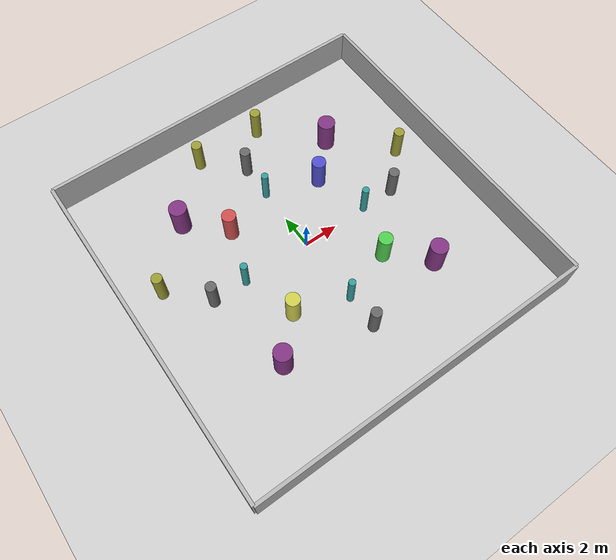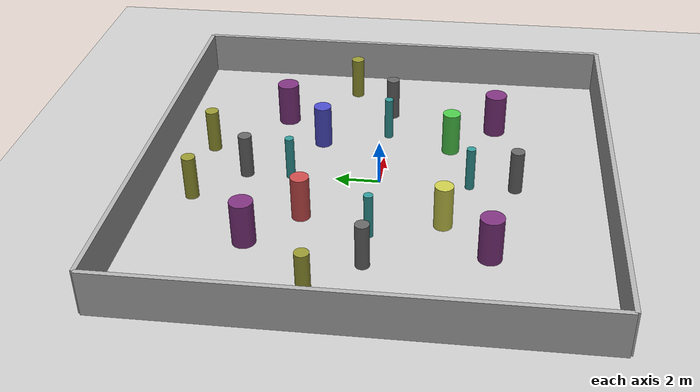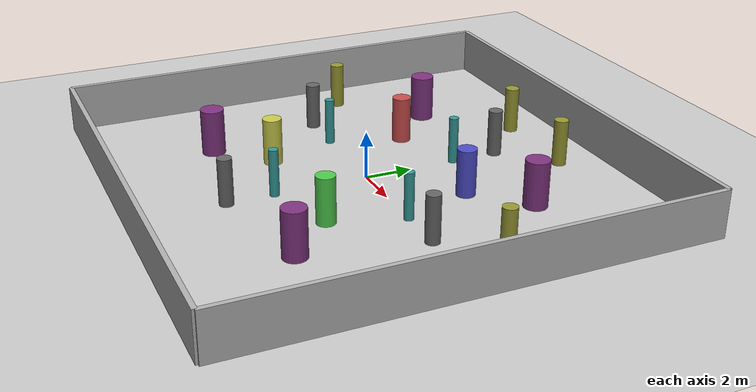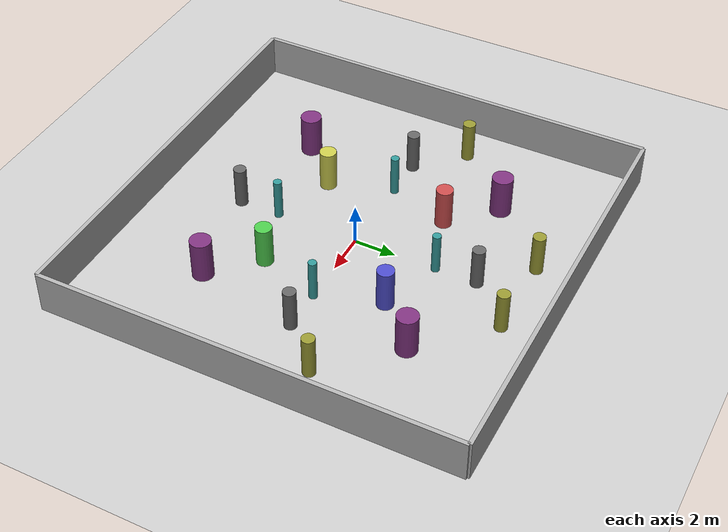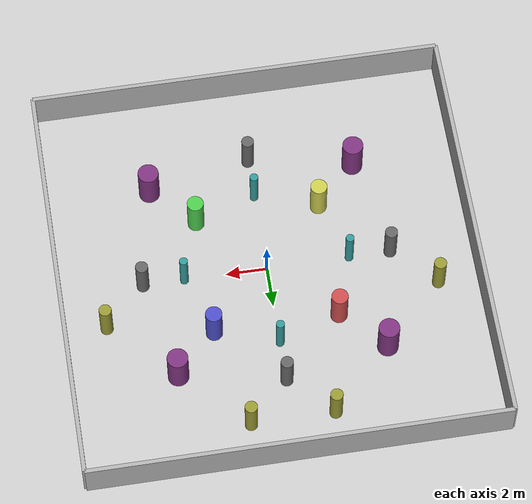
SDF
<?xml version="1.0" ?>
<sdf version="1.8">
  <world name="complex_cylinder_world">
    <!-- Physics -->
    <physics name="1ms" type="ignored">
      <max_step_size>0.001</max_step_size>
      <real_time_factor>1.0</real_time_factor>
    </physics>

    <!-- Plugins -->
    <plugin filename="gz-sim-physics-system" name="gz::sim::systems::Physics"/>
    <plugin filename="gz-sim-user-commands-system" name="gz::sim::systems::UserCommands"/>
    <plugin filename="gz-sim-scene-broadcaster-system" name="gz::sim::systems::SceneBroadcaster"/>
    <plugin filename="gz-sim-sensors-system" name="gz::sim::systems::Sensors"/>

    <!-- Lighting -->
    <light type="directional" name="sun">
      <cast_shadows>true</cast_shadows>
      <pose>0 0 10 0 0 0</pose>
      <diffuse>0.8 0.8 0.8 1</diffuse>
      <specular>0.2 0.2 0.2 1</specular>
      <attenuation>
        <range>1000</range>
        <constant>0.9</constant>
        <linear>0.01</linear>
        <quadratic>0.001</quadratic>
      </attenuation>
      <direction>-0.5 0.1 -0.9</direction>
    </light>

    <!-- Ground Plane -->
    <model name="ground_plane">
      <static>true</static>
      <link name="link">
        <collision name="collision">
          <geometry>
            <plane>
              <normal>0 0 1</normal>
              <size>100 100</size>
            </plane>
          </geometry>
        </collision>
        <visual name="visual">
          <geometry>
            <plane>
              <normal>0 0 1</normal>
              <size>100 100</size>
            </plane>
          </geometry>
          <material>
            <ambient>0.8 0.8 0.8 1</ambient>
            <diffuse>0.8 0.8 0.8 1</diffuse>
            <specular>0.8 0.8 0.8 1</specular>
          </material>
        </visual>
      </link>
    </model>

    <!-- Outer Walls (20m x 20m) -->
    <model name="outer_walls">
      <static>true</static>
      <link name="link">
        <visual name="wall_n">
          <pose>0 10 1.0 0 0 0</pose>
          <geometry><box><size>20 0.2 2</size></box></geometry>
          <material><ambient>0.7 0.7 0.7 1</ambient><diffuse>0.7 0.7 0.7 1</diffuse></material>
        </visual>
        <collision name="wall_n">
          <pose>0 10 1.0 0 0 0</pose>
          <geometry><box><size>20 0.2 2</size></box></geometry>
        </collision>

        <visual name="wall_s">
          <pose>0 -10 1.0 0 0 0</pose>
          <geometry><box><size>20 0.2 2</size></box></geometry>
          <material><ambient>0.7 0.7 0.7 1</ambient><diffuse>0.7 0.7 0.7 1</diffuse></material>
        </visual>
        <collision name="wall_s">
          <pose>0 -10 1.0 0 0 0</pose>
          <geometry><box><size>20 0.2 2</size></box></geometry>
        </collision>

        <visual name="wall_e">
          <pose>10 0 1.0 0 0 0</pose>
          <geometry><box><size>0.2 20 2</size></box></geometry>
          <material><ambient>0.7 0.7 0.7 1</ambient><diffuse>0.7 0.7 0.7 1</diffuse></material>
        </visual>
        <collision name="wall_e">
          <pose>10 0 1.0 0 0 0</pose>
          <geometry><box><size>0.2 20 2</size></box></geometry>
        </collision>

        <visual name="wall_w">
          <pose>-10 0 1.0 0 0 0</pose>
          <geometry><box><size>0.2 20 2</size></box></geometry>
          <material><ambient>0.7 0.7 0.7 1</ambient><diffuse>0.7 0.7 0.7 1</diffuse></material>
        </visual>
        <collision name="wall_w">
          <pose>-10 0 1.0 0 0 0</pose>
          <geometry><box><size>0.2 20 2</size></box></geometry>
        </collision>
      </link>
    </model>

    <!-- Cylinder Obstacles -->
    <!-- Creating a scattered field of cylinders -->

    <model name="cylinder_1">
      <static>true</static>
      <pose>3 3 1 0 0 0</pose>
      <link name="link">
        <visual name="v"><geometry><cylinder><radius>0.4</radius><length>2</length></cylinder></geometry>
        <material><ambient>0.3 0.3 0.8 1</ambient><diffuse>0.3 0.3 0.8 1</diffuse></material></visual>
        <collision name="c"><geometry><cylinder><radius>0.4</radius><length>2</length></cylinder></geometry></collision>
      </link>
    </model>

    <model name="cylinder_2">
      <static>true</static>
      <pose>-3 3 1 0 0 0</pose>
      <link name="link">
        <visual name="v"><geometry><cylinder><radius>0.4</radius><length>2</length></cylinder></geometry>
        <material><ambient>0.8 0.3 0.3 1</ambient><diffuse>0.8 0.3 0.3 1</diffuse></material></visual>
        <collision name="c"><geometry><cylinder><radius>0.4</radius><length>2</length></cylinder></geometry></collision>
      </link>
    </model>

    <model name="cylinder_3">
      <static>true</static>
      <pose>3 -3 1 0 0 0</pose>
      <link name="link">
        <visual name="v"><geometry><cylinder><radius>0.4</radius><length>2</length></cylinder></geometry>
        <material><ambient>0.3 0.8 0.3 1</ambient><diffuse>0.3 0.8 0.3 1</diffuse></material></visual>
        <collision name="c"><geometry><cylinder><radius>0.4</radius><length>2</length></cylinder></geometry></collision>
      </link>
    </model>

    <model name="cylinder_4">
      <static>true</static>
      <pose>-3 -3 1 0 0 0</pose>
      <link name="link">
        <visual name="v"><geometry><cylinder><radius>0.4</radius><length>2</length></cylinder></geometry>
        <material><ambient>0.8 0.8 0.3 1</ambient><diffuse>0.8 0.8 0.3 1</diffuse></material></visual>
        <collision name="c"><geometry><cylinder><radius>0.4</radius><length>2</length></cylinder></geometry></collision>
      </link>
    </model>

    <model name="cylinder_5">
      <static>true</static>
      <pose>6 0 1 0 0 0</pose>
      <link name="link">
        <visual name="v"><geometry><cylinder><radius>0.3</radius><length>2</length></cylinder></geometry>
        <material><ambient>0.4 0.4 0.4 1</ambient><diffuse>0.4 0.4 0.4 1</diffuse></material></visual>
        <collision name="c"><geometry><cylinder><radius>0.3</radius><length>2</length></cylinder></geometry></collision>
      </link>
    </model>

    <model name="cylinder_6">
      <static>true</static>
      <pose>-6 0 1 0 0 0</pose>
      <link name="link">
        <visual name="v"><geometry><cylinder><radius>0.3</radius><length>2</length></cylinder></geometry>
        <material><ambient>0.4 0.4 0.4 1</ambient><diffuse>0.4 0.4 0.4 1</diffuse></material></visual>
        <collision name="c"><geometry><cylinder><radius>0.3</radius><length>2</length></cylinder></geometry></collision>
      </link>
    </model>

    <model name="cylinder_7">
      <static>true</static>
      <pose>0 6 1 0 0 0</pose>
      <link name="link">
        <visual name="v"><geometry><cylinder><radius>0.3</radius><length>2</length></cylinder></geometry>
        <material><ambient>0.4 0.4 0.4 1</ambient><diffuse>0.4 0.4 0.4 1</diffuse></material></visual>
        <collision name="c"><geometry><cylinder><radius>0.3</radius><length>2</length></cylinder></geometry></collision>
      </link>
    </model>

    <model name="cylinder_8">
      <static>true</static>
      <pose>0 -6 1 0 0 0</pose>
      <link name="link">
        <visual name="v"><geometry><cylinder><radius>0.3</radius><length>2</length></cylinder></geometry>
        <material><ambient>0.4 0.4 0.4 1</ambient><diffuse>0.4 0.4 0.4 1</diffuse></material></visual>
        <collision name="c"><geometry><cylinder><radius>0.3</radius><length>2</length></cylinder></geometry></collision>
      </link>
    </model>

    <model name="cylinder_9">
      <static>true</static>
      <pose>5 5 1 0 0 0</pose>
      <link name="link">
        <visual name="v"><geometry><cylinder><radius>0.5</radius><length>2</length></cylinder></geometry>
        <material><ambient>0.5 0.2 0.5 1</ambient><diffuse>0.5 0.2 0.5 1</diffuse></material></visual>
        <collision name="c"><geometry><cylinder><radius>0.5</radius><length>2</length></cylinder></geometry></collision>
      </link>
    </model>

    <model name="cylinder_10">
      <static>true</static>
      <pose>-5 -5 1 0 0 0</pose>
      <link name="link">
        <visual name="v"><geometry><cylinder><radius>0.5</radius><length>2</length></cylinder></geometry>
        <material><ambient>0.5 0.2 0.5 1</ambient><diffuse>0.5 0.2 0.5 1</diffuse></material></visual>
        <collision name="c"><geometry><cylinder><radius>0.5</radius><length>2</length></cylinder></geometry></collision>
      </link>
    </model>

    <model name="cylinder_11">
      <static>true</static>
      <pose>5 -5 1 0 0 0</pose>
      <link name="link">
        <visual name="v"><geometry><cylinder><radius>0.5</radius><length>2</length></cylinder></geometry>
        <material><ambient>0.5 0.2 0.5 1</ambient><diffuse>0.5 0.2 0.5 1</diffuse></material></visual>
        <collision name="c"><geometry><cylinder><radius>0.5</radius><length>2</length></cylinder></geometry></collision>
      </link>
    </model>

    <model name="cylinder_12">
      <static>true</static>
      <pose>-5 5 1 0 0 0</pose>
      <link name="link">
        <visual name="v"><geometry><cylinder><radius>0.5</radius><length>2</length></cylinder></geometry>
        <material><ambient>0.5 0.2 0.5 1</ambient><diffuse>0.5 0.2 0.5 1</diffuse></material></visual>
        <collision name="c"><geometry><cylinder><radius>0.5</radius><length>2</length></cylinder></geometry></collision>
      </link>
    </model>

    <model name="cylinder_13">
      <static>true</static>
      <pose>8 2 1 0 0 0</pose>
      <link name="link">
        <visual name="v"><geometry><cylinder><radius>0.3</radius><length>2</length></cylinder></geometry>
        <material><ambient>0.6 0.6 0.2 1</ambient><diffuse>0.6 0.6 0.2 1</diffuse></material></visual>
        <collision name="c"><geometry><cylinder><radius>0.3</radius><length>2</length></cylinder></geometry></collision>
      </link>
    </model>

    <model name="cylinder_14">
      <static>true</static>
      <pose>-8 2 1 0 0 0</pose>
      <link name="link">
        <visual name="v"><geometry><cylinder><radius>0.3</radius><length>2</length></cylinder></geometry>
        <material><ambient>0.6 0.6 0.2 1</ambient><diffuse>0.6 0.6 0.2 1</diffuse></material></visual>
        <collision name="c"><geometry><cylinder><radius>0.3</radius><length>2</length></cylinder></geometry></collision>
      </link>
    </model>

    <model name="cylinder_15">
      <static>true</static>
      <pose>2 8 1 0 0 0</pose>
      <link name="link">
        <visual name="v"><geometry><cylinder><radius>0.3</radius><length>2</length></cylinder></geometry>
        <material><ambient>0.6 0.6 0.2 1</ambient><diffuse>0.6 0.6 0.2 1</diffuse></material></visual>
        <collision name="c"><geometry><cylinder><radius>0.3</radius><length>2</length></cylinder></geometry></collision>
      </link>
    </model>

    <model name="cylinder_16">
      <static>true</static>
      <pose>-2 8 1 0 0 0</pose>
      <link name="link">
        <visual name="v"><geometry><cylinder><radius>0.3</radius><length>2</length></cylinder></geometry>
        <material><ambient>0.6 0.6 0.2 1</ambient><diffuse>0.6 0.6 0.2 1</diffuse></material></visual>
        <collision name="c"><geometry><cylinder><radius>0.3</radius><length>2</length></cylinder></geometry></collision>
      </link>
    </model>

    <model name="cylinder_17">
      <static>true</static>
      <pose>4 0 1 0 0 0</pose>
      <link name="link">
        <visual name="v"><geometry><cylinder><radius>0.2</radius><length>2</length></cylinder></geometry>
        <material><ambient>0.2 0.6 0.6 1</ambient><diffuse>0.2 0.6 0.6 1</diffuse></material></visual>
        <collision name="c"><geometry><cylinder><radius>0.2</radius><length>2</length></cylinder></geometry></collision>
      </link>
    </model>

    <model name="cylinder_18">
      <static>true</static>
      <pose>-4 0 1 0 0 0</pose>
      <link name="link">
        <visual name="v"><geometry><cylinder><radius>0.2</radius><length>2</length></cylinder></geometry>
        <material><ambient>0.2 0.6 0.6 1</ambient><diffuse>0.2 0.6 0.6 1</diffuse></material></visual>
        <collision name="c"><geometry><cylinder><radius>0.2</radius><length>2</length></cylinder></geometry></collision>
      </link>
    </model>

    <model name="cylinder_19">
      <static>true</static>
      <pose>0 4 1 0 0 0</pose>
      <link name="link">
        <visual name="v"><geometry><cylinder><radius>0.2</radius><length>2</length></cylinder></geometry>
        <material><ambient>0.2 0.6 0.6 1</ambient><diffuse>0.2 0.6 0.6 1</diffuse></material></visual>
        <collision name="c"><geometry><cylinder><radius>0.2</radius><length>2</length></cylinder></geometry></collision>
      </link>
    </model>

    <model name="cylinder_20">
      <static>true</static>
      <pose>0 -4 1 0 0 0</pose>
      <link name="link">
        <visual name="v"><geometry><cylinder><radius>0.2</radius><length>2</length></cylinder></geometry>
        <material><ambient>0.2 0.6 0.6 1</ambient><diffuse>0.2 0.6 0.6 1</diffuse></material></visual>
        <collision name="c"><geometry><cylinder><radius>0.2</radius><length>2</length></cylinder></geometry></collision>
      </link>
    </model>

  </world>
</sdf>
